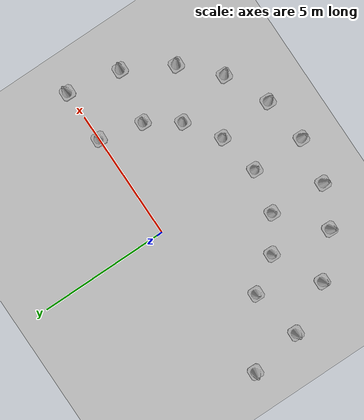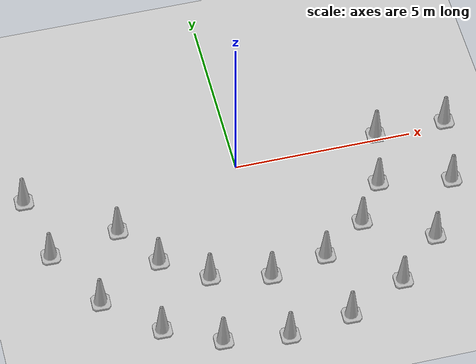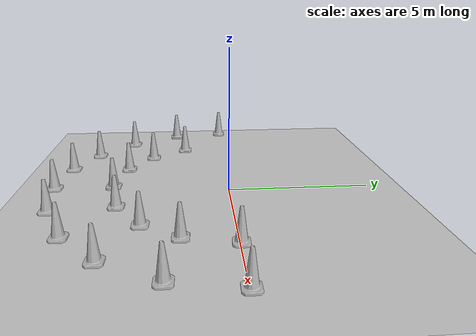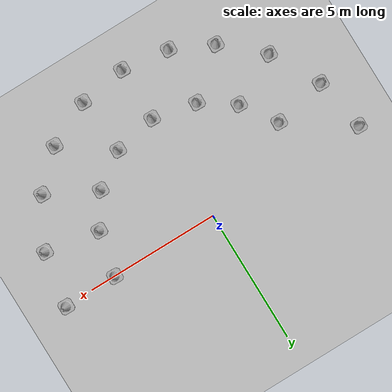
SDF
<sdf version="1.7">
 <world name="default">
  <model name="ground_plane">
   <static>1</static>
   <link name="link">
    <collision name="collision">
     <geometry><plane><normal>0 0 1</normal><size>100 100</size></plane></geometry>
     <surface><friction><ode><mu>100</mu><mu2>50</mu2></ode></friction></surface>
    </collision>
    <visual name="visual">
     <cast_shadows>0</cast_shadows>
     <geometry><plane><normal>0 0 1</normal><size>100 100</size></plane></geometry>
     <material>
      <script><uri>file://media/materials/scripts/gazebo.material</uri><name>Gazebo/Grey</name></script>
     </material>
    </visual>
    <velocity_decay><linear>0</linear><angular>0</angular></velocity_decay>
   </link>
  </model>
  <model name="Construction Cone">
   <link name="link">
    <collision name="collision">
     <geometry>
      <mesh><scale>10 10 10</scale><uri>model://construction_cone/meshes/construction_cone.dae</uri></mesh>
     </geometry>
    </collision>
    <visual name="visual">
     <geometry>
      <mesh><scale>10 10 10</scale><uri>model://construction_cone/meshes/construction_cone.dae</uri></mesh>
     </geometry>
    </visual>
    <velocity_decay><linear>0</linear><angular>0</angular></velocity_decay>
    <inertial>
     <inertia><ixx>1</ixx><ixy>0</ixy><ixz>0</ixz><iyy>1</iyy><iyz>0</iyz><izz>1</izz></inertia>
     <mass>1</mass>
    </inertial>
   </link>
   <pose>0.011461 -6.00638 0.225525 7.7e-05 -9.7e-05 -0.028934</pose>
   <static>0</static>
  </model>
  <model name="Construction Cone_1">
   <link name="link">
    <collision name="collision">
     <geometry>
      <mesh><scale>10 10 10</scale><uri>model://construction_cone/meshes/construction_cone.dae</uri></mesh>
     </geometry>
    </collision>
    <visual name="visual">
     <geometry>
      <mesh><scale>10 10 10</scale><uri>model://construction_cone/meshes/construction_cone.dae</uri></mesh>
     </geometry>
    </visual>
    <velocity_decay><linear>0</linear><angular>0</angular></velocity_decay>
    <inertial>
     <inertia><ixx>1</ixx><ixy>0</ixy><ixz>0</ixz><iyy>1</iyy><iyz>0</iyz><izz>1</izz></inertia>
     <mass>1</mass>
    </inertial>
   </link>
   <pose>0.011461 -4.00638 0.225525 7.7e-05 -9.7e-05 -0.028934</pose>
   <static>0</static>
  </model>
  <model name="Construction Cone_0_clone_0">
   <link name="link">
    <collision name="collision">
     <geometry>
      <mesh><scale>10 10 10</scale><uri>model://construction_cone/meshes/construction_cone.dae</uri></mesh>
     </geometry>
    </collision>
    <visual name="visual">
     <geometry>
      <mesh><scale>10 10 10</scale><uri>model://construction_cone/meshes/construction_cone.dae</uri></mesh>
     </geometry>
    </visual>
    <velocity_decay><linear>0</linear><angular>0</angular></velocity_decay>
    <inertial>
     <inertia><ixx>1</ixx><ixy>0</ixy><ixz>0</ixz><iyy>1</iyy><iyz>0</iyz><izz>1</izz></inertia>
     <mass>1</mass>
    </inertial>
   </link>
   <pose>4.01017 -0.006526 0.22554 8e-06 -1.6e-05 -0.049662</pose>
   <static>0</static>
  </model>
  <model name="Construction Cone_0_clone_1">
   <link name="link">
    <collision name="collision">
     <geometry>
      <mesh><scale>10 10 10</scale><uri>model://construction_cone/meshes/construction_cone.dae</uri></mesh>
     </geometry>
    </collision>
    <visual name="visual">
     <geometry>
      <mesh><scale>10 10 10</scale><uri>model://construction_cone/meshes/construction_cone.dae</uri></mesh>
     </geometry>
    </visual>
    <velocity_decay><linear>0</linear><angular>0</angular></velocity_decay>
    <inertial>
     <inertia><ixx>1</ixx><ixy>0</ixy><ixz>0</ixz><iyy>1</iyy><iyz>0</iyz><izz>1</izz></inertia>
     <mass>1</mass>
    </inertial>
   </link>
   <pose>6.00922 0.00334 0.224663 1.4e-05 -2.8e-05 -0.022802</pose>
   <static>0</static>
  </model>
  <model name="Construction Cone_0_clone_3">
   <link name="link">
    <collision name="collision">
     <geometry>
      <mesh><scale>10 10 10</scale><uri>model://construction_cone/meshes/construction_cone.dae</uri></mesh>
     </geometry>
    </collision>
    <visual name="visual">
     <geometry>
      <mesh><scale>10 10 10</scale><uri>model://construction_cone/meshes/construction_cone.dae</uri></mesh>
     </geometry>
    </visual>
    <velocity_decay><linear>0</linear><angular>0</angular></velocity_decay>
    <inertial>
     <inertia><ixx>1</ixx><ixy>0</ixy><ixz>0</ixz><iyy>1</iyy><iyz>0</iyz><izz>1</izz></inertia>
     <mass>1</mass>
    </inertial>
   </link>
   <pose>-5.99115 0.003335 0.22554 8e-06 -1.5e-05 -0.024383</pose>
   <static>0</static>
  </model>
  <model name="Construction Cone_0_clone_0_clone">
   <link name="link">
    <collision name="collision">
     <geometry>
      <mesh><scale>10 10 10</scale><uri>model://construction_cone/meshes/construction_cone.dae</uri></mesh>
     </geometry>
    </collision>
    <visual name="visual">
     <geometry>
      <mesh><scale>10 10 10</scale><uri>model://construction_cone/meshes/construction_cone.dae</uri></mesh>
     </geometry>
    </visual>
    <velocity_decay><linear>0</linear><angular>0</angular></velocity_decay>
    <inertial>
     <inertia><ixx>1</ixx><ixy>0</ixy><ixz>0</ixz><iyy>1</iyy><iyz>0</iyz><izz>1</izz></inertia>
     <mass>1</mass>
    </inertial>
   </link>
   <pose>1.59543 -3.69534 0.22554 1.6e-05 -7e-06 -0.029158</pose>
   <static>0</static>
  </model>
  <model name="Construction Cone_0_clone_0_clone_0">
   <link name="link">
    <collision name="collision">
     <geometry>
      <mesh><scale>10 10 10</scale><uri>model://construction_cone/meshes/construction_cone.dae</uri></mesh>
     </geometry>
    </collision>
    <visual name="visual">
     <geometry>
      <mesh><scale>10 10 10</scale><uri>model://construction_cone/meshes/construction_cone.dae</uri></mesh>
     </geometry>
    </visual>
    <velocity_decay><linear>0</linear><angular>0</angular></velocity_decay>
    <inertial>
     <inertia><ixx>1</ixx><ixy>0</ixy><ixz>0</ixz><iyy>1</iyy><iyz>0</iyz><izz>1</izz></inertia>
     <mass>1</mass>
    </inertial>
   </link>
   <pose>2.85101 -2.82608 0.22554 8e-06 -1.5e-05 -0.029134</pose>
   <static>0</static>
  </model>
  <model name="Construction Cone_0_clone_0_clone_1">
   <link name="link">
    <collision name="collision">
     <geometry>
      <mesh><scale>10 10 10</scale><uri>model://construction_cone/meshes/construction_cone.dae</uri></mesh>
     </geometry>
    </collision>
    <visual name="visual">
     <geometry>
      <mesh><scale>10 10 10</scale><uri>model://construction_cone/meshes/construction_cone.dae</uri></mesh>
     </geometry>
    </visual>
    <velocity_decay><linear>0</linear><angular>0</angular></velocity_decay>
    <inertial>
     <inertia><ixx>1</ixx><ixy>0</ixy><ixz>0</ixz><iyy>1</iyy><iyz>0</iyz><izz>1</izz></inertia>
     <mass>1</mass>
    </inertial>
   </link>
   <pose>3.63597 -1.64529 0.224663 1.4e-05 -2.8e-05 -0.029745</pose>
   <static>0</static>
  </model>
  <model name="Construction Cone_0_clone_0_clone_clone">
   <link name="link">
    <collision name="collision">
     <geometry>
      <mesh><scale>10 10 10</scale><uri>model://construction_cone/meshes/construction_cone.dae</uri></mesh>
     </geometry>
    </collision>
    <visual name="visual">
     <geometry>
      <mesh><scale>10 10 10</scale><uri>model://construction_cone/meshes/construction_cone.dae</uri></mesh>
     </geometry>
    </visual>
    <velocity_decay><linear>0</linear><angular>0</angular></velocity_decay>
    <inertial>
     <inertia><ixx>1</ixx><ixy>0</ixy><ixz>0</ixz><iyy>1</iyy><iyz>0</iyz><izz>1</izz></inertia>
     <mass>1</mass>
    </inertial>
   </link>
   <pose>-1.61129 -3.65758 0.22554 8e-06 -1.5e-05 -0.029134</pose>
   <static>0</static>
  </model>
  <model name="Construction Cone_0_clone_0_clone_clone_0">
   <link name="link">
    <collision name="collision">
     <geometry>
      <mesh><scale>10 10 10</scale><uri>model://construction_cone/meshes/construction_cone.dae</uri></mesh>
     </geometry>
    </collision>
    <visual name="visual">
     <geometry>
      <mesh><scale>10 10 10</scale><uri>model://construction_cone/meshes/construction_cone.dae</uri></mesh>
     </geometry>
    </visual>
    <velocity_decay><linear>0</linear><angular>0</angular></velocity_decay>
    <inertial>
     <inertia><ixx>1</ixx><ixy>0</ixy><ixz>0</ixz><iyy>1</iyy><iyz>0</iyz><izz>1</izz></inertia>
     <mass>1</mass>
    </inertial>
   </link>
   <pose>-2.82851 -2.8304 0.22554 8e-06 -1.6e-05 -0.029324</pose>
   <static>0</static>
  </model>
  <model name="Construction Cone_0_clone_0_clone_clone_1">
   <link name="link">
    <collision name="collision">
     <geometry>
      <mesh><scale>10 10 10</scale><uri>model://construction_cone/meshes/construction_cone.dae</uri></mesh>
     </geometry>
    </collision>
    <visual name="visual">
     <geometry>
      <mesh><scale>10 10 10</scale><uri>model://construction_cone/meshes/construction_cone.dae</uri></mesh>
     </geometry>
    </visual>
    <velocity_decay><linear>0</linear><angular>0</angular></velocity_decay>
    <inertial>
     <inertia><ixx>1</ixx><ixy>0</ixy><ixz>0</ixz><iyy>1</iyy><iyz>0</iyz><izz>1</izz></inertia>
     <mass>1</mass>
    </inertial>
   </link>
   <pose>-3.69294 -1.56978 0.224663 1.4e-05 -2.8e-05 -0.029804</pose>
   <static>0</static>
  </model>
  <model name="Construction Cone_clone">
   <link name="link">
    <collision name="collision">
     <geometry>
      <mesh><scale>10 10 10</scale><uri>model://construction_cone/meshes/construction_cone.dae</uri></mesh>
     </geometry>
    </collision>
    <visual name="visual">
     <geometry>
      <mesh><scale>10 10 10</scale><uri>model://construction_cone/meshes/construction_cone.dae</uri></mesh>
     </geometry>
    </visual>
    <velocity_decay><linear>0</linear><angular>0</angular></velocity_decay>
    <inertial>
     <inertia><ixx>1</ixx><ixy>0</ixy><ixz>0</ixz><iyy>1</iyy><iyz>0</iyz><izz>1</izz></inertia>
     <mass>1</mass>
    </inertial>
   </link>
   <pose>1.76286 -5.75569 0.22554 1.6e-05 -7e-06 -0.028374</pose>
   <static>0</static>
  </model>
  <model name="Construction Cone_clone_0">
   <link name="link">
    <collision name="collision">
     <geometry>
      <mesh><scale>10 10 10</scale><uri>model://construction_cone/meshes/construction_cone.dae</uri></mesh>
     </geometry>
    </collision>
    <visual name="visual">
     <geometry>
      <mesh><scale>10 10 10</scale><uri>model://construction_cone/meshes/construction_cone.dae</uri></mesh>
     </geometry>
    </visual>
    <velocity_decay><linear>0</linear><angular>0</angular></velocity_decay>
    <inertial>
     <inertia><ixx>1</ixx><ixy>0</ixy><ixz>0</ixz><iyy>1</iyy><iyz>0</iyz><izz>1</izz></inertia>
     <mass>1</mass>
    </inertial>
   </link>
   <pose>3.40809 -4.9817 0.22554 1.6e-05 -7e-06 -0.028371</pose>
   <static>0</static>
  </model>
  <model name="Construction Cone_clone_1">
   <link name="link">
    <collision name="collision">
     <geometry>
      <mesh><scale>10 10 10</scale><uri>model://construction_cone/meshes/construction_cone.dae</uri></mesh>
     </geometry>
    </collision>
    <visual name="visual">
     <geometry>
      <mesh><scale>10 10 10</scale><uri>model://construction_cone/meshes/construction_cone.dae</uri></mesh>
     </geometry>
    </visual>
    <velocity_decay><linear>0</linear><angular>0</angular></velocity_decay>
    <inertial>
     <inertia><ixx>1</ixx><ixy>0</ixy><ixz>0</ixz><iyy>1</iyy><iyz>0</iyz><izz>1</izz></inertia>
     <mass>1</mass>
    </inertial>
   </link>
   <pose>4.66932 -3.7698 0.22554 8e-06 -1.6e-05 -0.028516</pose>
   <static>0</static>
  </model>
  <model name="Construction Cone_clone_2">
   <link name="link">
    <collision name="collision">
     <geometry>
      <mesh><scale>10 10 10</scale><uri>model://construction_cone/meshes/construction_cone.dae</uri></mesh>
     </geometry>
    </collision>
    <visual name="visual">
     <geometry>
      <mesh><scale>10 10 10</scale><uri>model://construction_cone/meshes/construction_cone.dae</uri></mesh>
     </geometry>
    </visual>
    <velocity_decay><linear>0</linear><angular>0</angular></velocity_decay>
    <inertial>
     <inertia><ixx>1</ixx><ixy>0</ixy><ixz>0</ixz><iyy>1</iyy><iyz>0</iyz><izz>1</izz></inertia>
     <mass>1</mass>
    </inertial>
   </link>
   <pose>5.63842 -2.00892 0.22554 8e-06 -1.6e-05 -0.028864</pose>
   <static>0</static>
  </model>
  <model name="Construction Cone_clone_3">
   <link name="link">
    <collision name="collision">
     <geometry>
      <mesh><scale>10 10 10</scale><uri>model://construction_cone/meshes/construction_cone.dae</uri></mesh>
     </geometry>
    </collision>
    <visual name="visual">
     <geometry>
      <mesh><scale>10 10 10</scale><uri>model://construction_cone/meshes/construction_cone.dae</uri></mesh>
     </geometry>
    </visual>
    <velocity_decay><linear>0</linear><angular>0</angular></velocity_decay>
    <inertial>
     <inertia><ixx>1</ixx><ixy>0</ixy><ixz>0</ixz><iyy>1</iyy><iyz>0</iyz><izz>1</izz></inertia>
     <mass>1</mass>
    </inertial>
   </link>
   <pose>-1.74608 -5.75566 0.225525 7.7e-05 -9.7e-05 -0.028378</pose>
   <static>0</static>
  </model>
  <model name="Construction Cone_clone_4">
   <link name="link">
    <collision name="collision">
     <geometry>
      <mesh><scale>10 10 10</scale><uri>model://construction_cone/meshes/construction_cone.dae</uri></mesh>
     </geometry>
    </collision>
    <visual name="visual">
     <geometry>
      <mesh><scale>10 10 10</scale><uri>model://construction_cone/meshes/construction_cone.dae</uri></mesh>
     </geometry>
    </visual>
    <velocity_decay><linear>0</linear><angular>0</angular></velocity_decay>
    <inertial>
     <inertia><ixx>1</ixx><ixy>0</ixy><ixz>0</ixz><iyy>1</iyy><iyz>0</iyz><izz>1</izz></inertia>
     <mass>1</mass>
    </inertial>
   </link>
   <pose>-3.24111 -5.03945 0.22554 8e-06 -1.6e-05 -0.028541</pose>
   <static>0</static>
  </model>
  <model name="Construction Cone_clone_5">
   <link name="link">
    <collision name="collision">
     <geometry>
      <mesh><scale>10 10 10</scale><uri>model://construction_cone/meshes/construction_cone.dae</uri></mesh>
     </geometry>
    </collision>
    <visual name="visual">
     <geometry>
      <mesh><scale>10 10 10</scale><uri>model://construction_cone/meshes/construction_cone.dae</uri></mesh>
     </geometry>
    </visual>
    <velocity_decay><linear>0</linear><angular>0</angular></velocity_decay>
    <inertial>
     <inertia><ixx>1</ixx><ixy>0</ixy><ixz>0</ixz><iyy>1</iyy><iyz>0</iyz><izz>1</izz></inertia>
     <mass>1</mass>
    </inertial>
   </link>
   <pose>-4.64213 -3.77525 0.22554 8e-06 -1.6e-05 -0.028533</pose>
   <static>0</static>
  </model>
  <model name="Construction Cone_clone_6">
   <link name="link">
    <collision name="collision">
     <geometry>
      <mesh><scale>10 10 10</scale><uri>model://construction_cone/meshes/construction_cone.dae</uri></mesh>
     </geometry>
    </collision>
    <visual name="visual">
     <geometry>
      <mesh><scale>10 10 10</scale><uri>model://construction_cone/meshes/construction_cone.dae</uri></mesh>
     </geometry>
    </visual>
    <velocity_decay><linear>0</linear><angular>0</angular></velocity_decay>
    <inertial>
     <inertia><ixx>1</ixx><ixy>0</ixy><ixz>0</ixz><iyy>1</iyy><iyz>0</iyz><izz>1</izz></inertia>
     <mass>1</mass>
    </inertial>
   </link>
   <pose>-5.64259 -1.9687 0.22554 1.6e-05 -7e-06 -0.028323</pose>
   <static>0</static>
  </model>
 </world>
</sdf>
